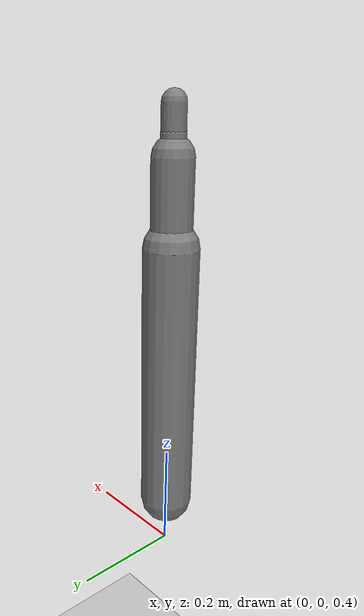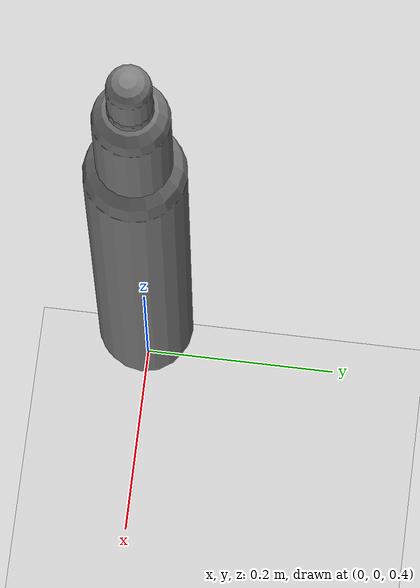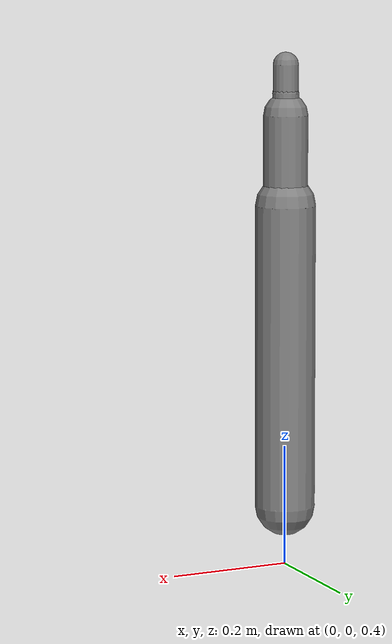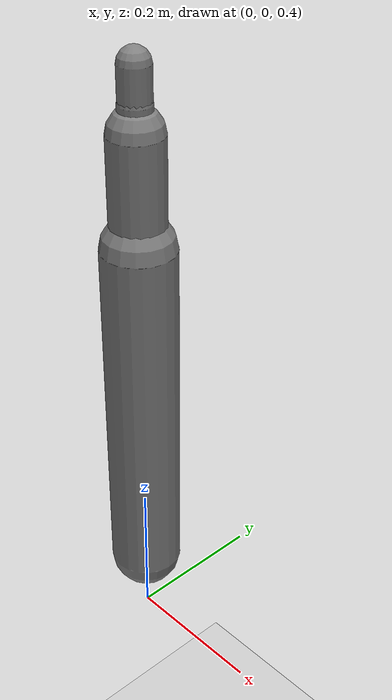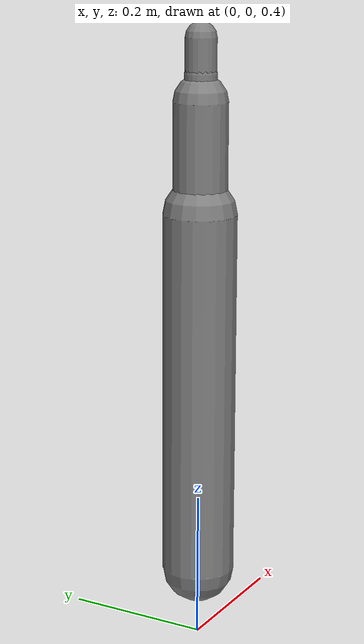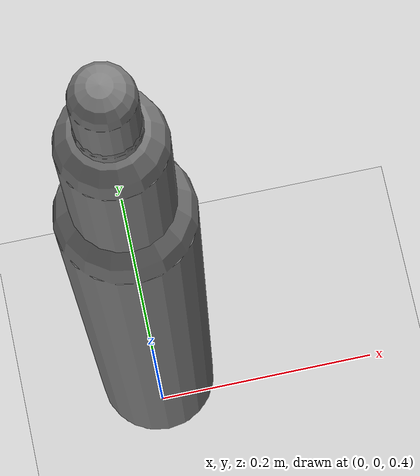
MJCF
<?xml version='1.0' encoding='UTF-8'?>
<mujoco model="RobotModel">
  <option gravity="0 0 -9.81" timestep="0.002" solver="CG" iterations="500" integrator="Euler"/>
  <worldbody>
    <geom name="Floor" type="plane" size="10 10 0.1" pos="0 0 0" rgba="0.8 0.8 0.8 1"/>
    <body name="Limb0" pos="0 0 0.5">
      <geom type="capsule" fromto="0 0 0 0 0 0.5" size="0.049626465967722105" density="1000" contype="0" conaffinity="0"/>
      <body name="Limb0_43d18eca" pos="0 0 0.5">
        <geom type="capsule" fromto="0 0 0 0 0 0.22868193103929702" size="0.02089993200402006" density="800" contype="0" conaffinity="0"/>
        <joint name="Joint_Limb0_Limb0_43d18eca_0" type="hinge" axis="1 0 0" range="-60 60"/>
      </body>
      <body name="Limb1_43d18eca" pos="0 0 0.5">
        <geom type="capsule" fromto="0 0 0 0 0 0.18255839182342928" size="0.021682600561181445" density="800" contype="0" conaffinity="0"/>
        <joint name="Joint_Limb0_Limb1_43d18eca_0" type="hinge" axis="0 1 0" range="-45 45"/>
      </body>
      <body name="Limb2_43d18eca" pos="0 0 0.5">
        <geom type="capsule" fromto="0 0 0 0 0 0.14689883720212824" size="0.03652426012251092" density="800" contype="0" conaffinity="0"/>
        <joint name="Joint_Limb0_Limb2_43d18eca_0" type="hinge" axis="0 1 0" range="-45 45"/>
      </body>
    </body>
  </worldbody>
  <actuator>
    <position name="position_Actuator_Joint_Limb0_Limb0_43d18eca_0" joint="Joint_Limb0_Limb0_43d18eca_0" gear="1.0"/>
    <position name="position_Actuator_Joint_Limb0_Limb1_43d18eca_0" joint="Joint_Limb0_Limb1_43d18eca_0" gear="1.0"/>
    <position name="position_Actuator_Joint_Limb0_Limb2_43d18eca_0" joint="Joint_Limb0_Limb2_43d18eca_0" gear="1.0"/>
  </actuator>
</mujoco>
